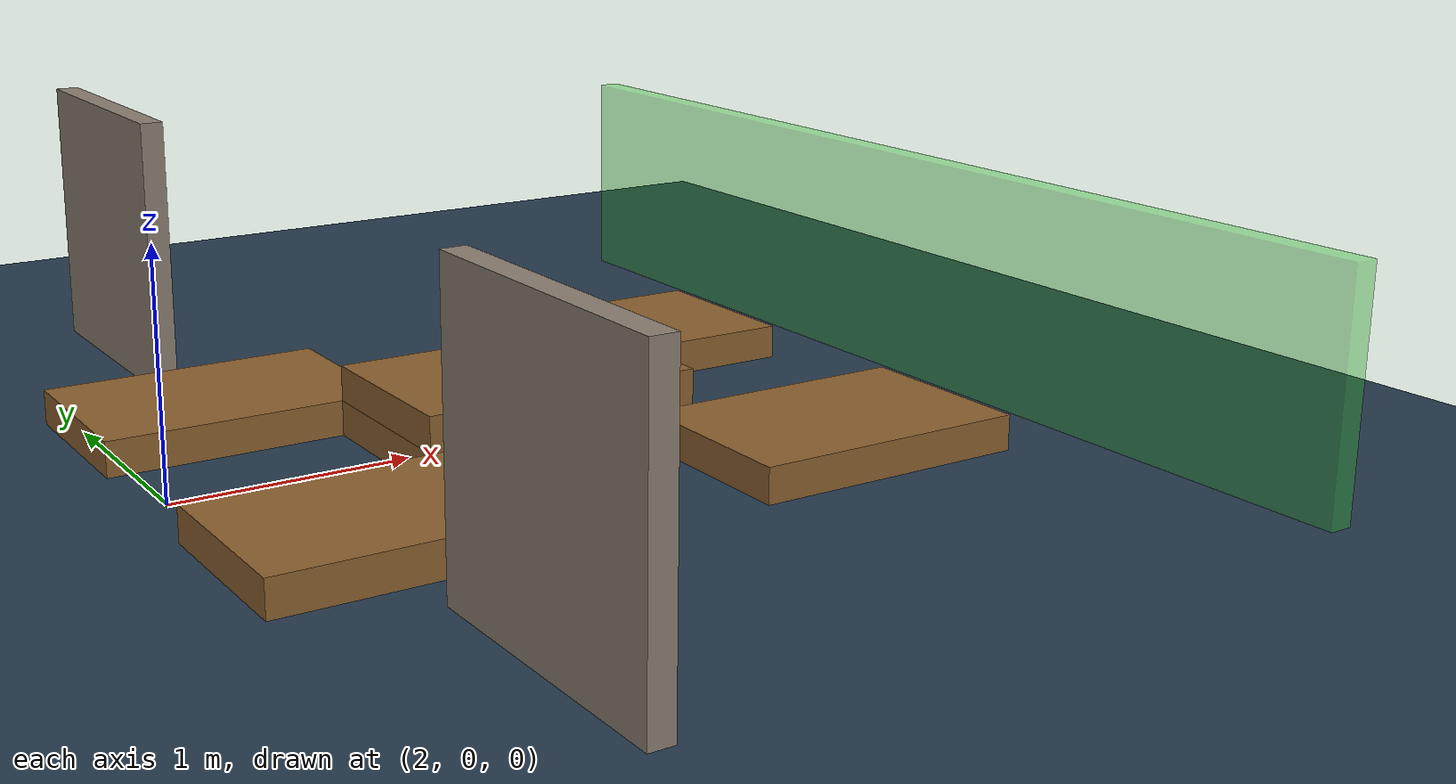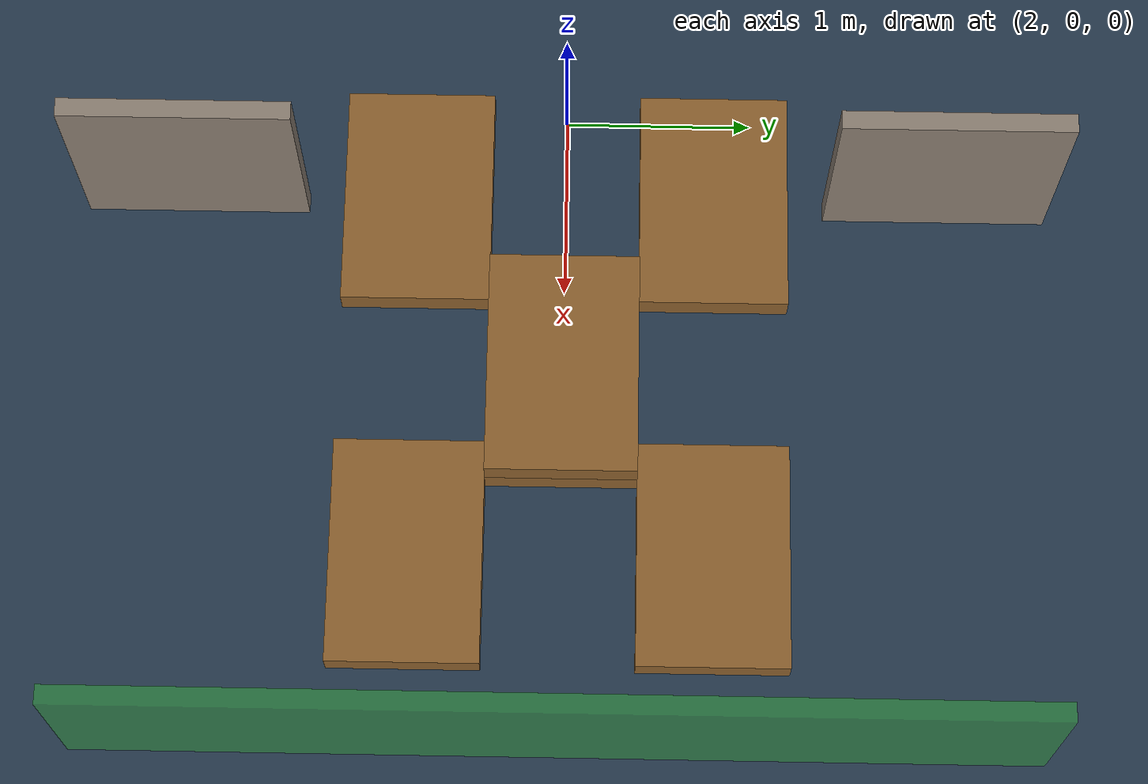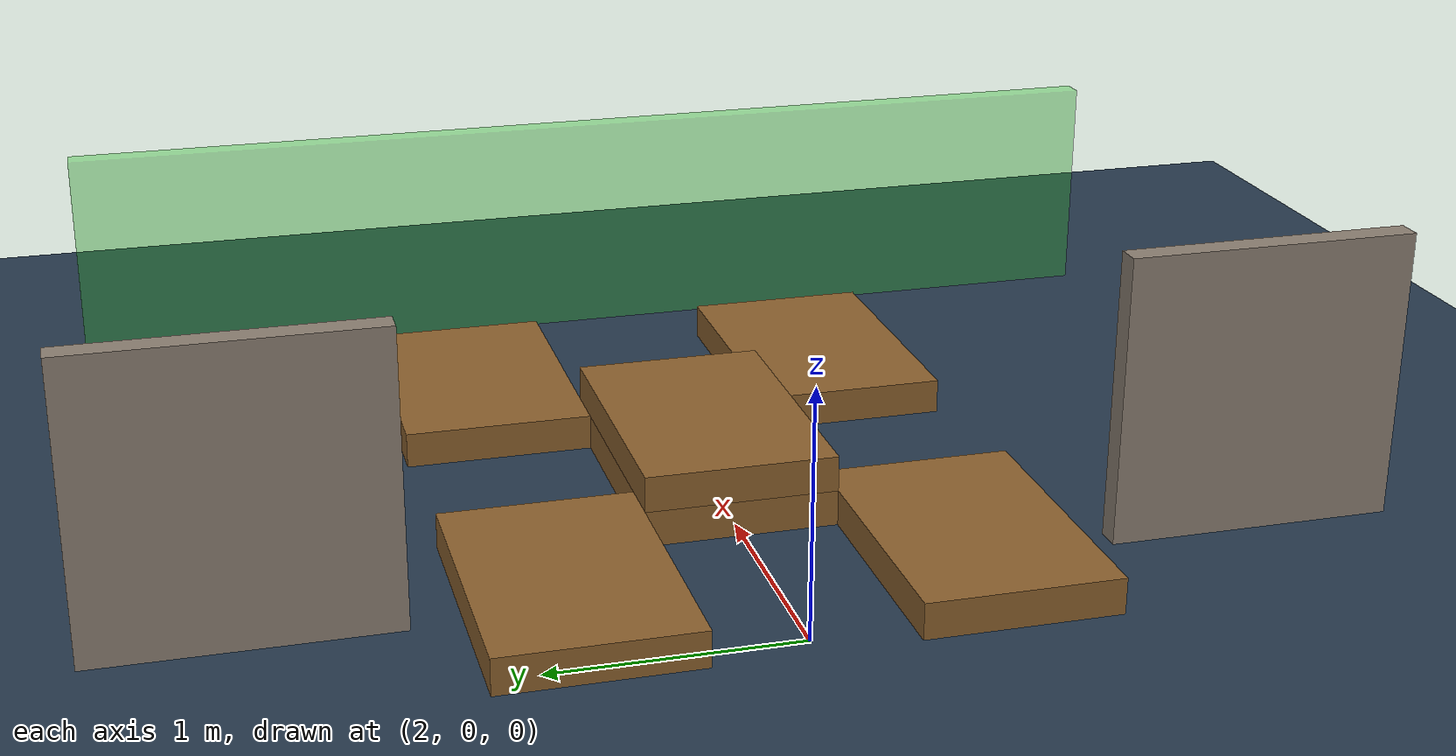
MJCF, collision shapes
<mujoco model="aesir_pista_pallets">

  <compiler angle="radian" autolimits="true" meshdir="meshes"/>
  <option timestep="0.002" iterations="50" tolerance="1e-10"
          solver="Newton" integrator="implicitfast"
          cone="elliptic" impratio="10"/>
  <size njmax="1000" nconmax="500" nstack="2000000"/>

  <visual>
    <headlight diffuse="0.6 0.6 0.6" ambient="0.3 0.3 0.3" specular="0 0 0"/>
    <rgba haze="0.15 0.25 0.35 1"/>
    <global azimuth="120" elevation="-20"/>
    <map znear="0.01" zfar="50"/>
  </visual>

  <!-- Incluye la definición completa del robot (contact, asset, worldbody, actuator, sensor) -->
  <include file="aesir_robot.xml"/>

  <default>
    <!-- Pallets: madera, alta fricción -->
    <default class="pallet">
      <geom type="box" size="0.60 0.40 0.075"
            friction="0.8 0.01 0.001" condim="3"
            rgba="0.55 0.38 0.18 1"/>
    </default>
  </default>

  <!-- Assets del mundo (texturas y malla visual de pallets) -->
  <asset>
    <mesh name="pallets_mesh" file="pallets/base_link.stl" scale="0.001 0.001 0.001"/>
    <texture name="texplane" type="2d" builtin="checker"
             rgb1=".2 .3 .4" rgb2=".1 0.15 0.2" width="512" height="512"/>
    <material name="matplane"  reflectance="0.3" texture="texplane"
              texrepeat="4 4" texuniform="true"/>
    <material name="matpallet" rgba="0.55 0.38 0.18 1"/>
    <material name="matwall"   rgba="0.55 0.50 0.45 1"/>
  </asset>

  <!-- Geometría del mundo (sin el robot — ese viene del include) -->
  <worldbody>
    <light directional="true"  diffuse=".8 .8 .8" specular=".2 .2 .2" pos="0 0 5" dir="0 0 -1"/>
    <light directional="false" pos="3.5 0 3" dir="-1 0 -1" diffuse="0.4 0.4 0.4"/>
    <geom name="floor" type="plane" size="12 12 0.1" pos="0 0 0" material="matplane"/>

    <!-- Cámaras de supervisión (mundo fijo) -->
    <camera name="cam_overview" pos="3.5 0 7" euler="0 0 -1.5707" fovy="65" mode="fixed"/>
    <camera name="cam_door"     pos="6.5 0 1.5" euler="1.3 1.5707 0"
            fovy="55" mode="targetbody" target="footprint_link"/>

    <!-- ================== PISTA: PALLETS ================== -->
    <!-- Mesh visual del conjunto (solo visual, centroide ajustado) -->
    <body name="pallets_mesh_body" pos="3 -3.49 0">
      <geom name="pallets_visual" type="mesh" mesh="pallets_mesh"
            contype="0" conaffinity="0" rgba="0.55 0.38 0.18 0.5"/>
    </body>

    <!-- Chicana A (x=2.5m) — gap central de 0.8m -->
    <body name="pallet_A1" pos="2.5  0.80 0.075"><geom class="pallet" material="matpallet"/></body>
    <body name="pallet_A2" pos="2.5 -0.80 0.075"><geom class="pallet" material="matpallet"/></body>
    <body name="wall_A_L"  pos="2.5  2.0  0.6"><geom type="box" size="0.05 0.60 0.60" material="matwall"/></body>
    <body name="wall_A_R"  pos="2.5 -2.0  0.6"><geom type="box" size="0.05 0.60 0.60" material="matwall"/></body>

    <!-- Chicana B (x=3.5m) — bloqueo central, gap a los lados -->
    <body name="pallet_B1" pos="3.5  0.0 0.075"><geom class="pallet" material="matpallet"/></body>
    <body name="pallet_B2" pos="3.5  0.0 0.225"><geom class="pallet" material="matpallet"/></body>

    <!-- Chicana C (x=4.5m) — espejo de A -->
    <body name="pallet_C1" pos="4.5  0.80 0.075"><geom class="pallet" material="matpallet"/></body>
    <body name="pallet_C2" pos="4.5 -0.80 0.075"><geom class="pallet" material="matpallet"/></body>

    <!-- Barrera meta — el robot debe cruzarla -->
    <body name="barrier_goal" pos="5.5 0 0.50">
      <geom type="box" size="0.05 2.50 0.50" rgba="0.2 0.8 0.2 0.4"
            contype="0" conaffinity="0"/>
    </body>
  </worldbody>

  <keyframe>
    <!-- qpos = base(7) + lidar_spin(1) + flipper_joints(4) +
                flipper_wheels(8) + arm(6) + fingers(2) + drive_wheels(6) = 34 -->
    <key name="home"
         qpos="0 0 0.10 1 0 0 0
               0
               0 0 0 0
               0 0 0 0 0 0 0 0
               0 0 0 0 0 0
               0 0
               0 0 0 0 0 0"/>
  </keyframe>

</mujoco>

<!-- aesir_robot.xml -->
<contact>
  <exclude body1="footprint_link" body2="flipper_1_link"/>
  <exclude body1="footprint_link" body2="flipper_2_link"/>
  <exclude body1="footprint_link" body2="flipper_3_link"/>
  <exclude body1="footprint_link" body2="flipper_4_link"/>
</contact>

<asset>
  <!-- Rutas sin prefijo meshes/ — resueltas por meshdir del mundo padre -->
  <mesh name="base_link"   file="base_link.stl"   scale="0.001 0.001 0.001"/>
  <mesh name="tracked_1"   file="tracked_1.stl"   scale="0.001 0.001 0.001"/>
  <mesh name="tracked_2"   file="tracked_2.stl"   scale="0.001 0.001 0.001"/>
  <mesh name="flipper_1_1" file="flipper_1_1.stl" scale="0.001 0.001 0.001"/>
  <mesh name="flipper_4_1" file="flipper_4_1.stl" scale="0.001 0.001 0.001"/>
  <mesh name="flipper_3_1" file="flipper_3_1.stl" scale="0.001 0.001 0.001"/>
  <mesh name="flipper_2_1" file="flipper_2_1.stl" scale="0.001 0.001 0.001"/>
  <mesh name="lidar"       file="lidar.stl"       scale="0.001 0.001 0.001"/>
</asset>

<worldbody>
  <!-- ================ ROBOT AESIR ================ -->
  <body name="footprint_link" pos="0 0 0.1">
    <freejoint name="base_freejoint"/>
    <inertial pos="0 0 0.06" mass="25.0" diaginertia="1.2 1.6 2.7"/>

    <geom pos="0 0.55 0" type="mesh" rgba="0.75 0.75 0.75 1" mesh="base_link"  contype="0" conaffinity="0"/>
    <geom pos="0 0.55 0" type="mesh" rgba="0.75 0.75 0.75 1" mesh="tracked_1"  contype="0" conaffinity="0"/>
    <geom pos="0 0.562 0" type="mesh" rgba="0.75 0.75 0.75 1" mesh="tracked_2" contype="0" conaffinity="0"/>
    <geom size="0.06 0.07915" pos="0.12 0 0.13915" type="cylinder" rgba="0.2 0.2 0.2 1"/>

    <!-- LIDAR rotatorio — 7 rayos verticales, gira sobre eje Z -->
    <body name="sensor_lidar" pos="0.32 0 0.105" euler="0 0.7854 0">
      <joint name="lidar_spin" type="hinge" axis="0 0 1" damping="0.1" armature="0.01"/>
      <geom type="mesh" rgba="0.2 0.2 0.2 1" mesh="lidar" contype="0" conaffinity="0"/>
      <site name="ray_0" pos="0.03 0 0.037" euler="0 0      0" type="sphere" size="0.005"/>
      <site name="ray_1" pos="0.03 0 0.037" euler="0 0.2793 0" type="sphere" size="0.005"/>
      <site name="ray_2" pos="0.03 0 0.037" euler="0 0.5585 0" type="sphere" size="0.005"/>
      <site name="ray_3" pos="0.03 0 0.037" euler="0 0.8378 0" type="sphere" size="0.005"/>
      <site name="ray_4" pos="0.03 0 0.037" euler="0 1.1170 0" type="sphere" size="0.005"/>
      <site name="ray_5" pos="0.03 0 0.037" euler="0 1.3963 0" type="sphere" size="0.005"/>
      <site name="ray_6" pos="0.03 0 0.037" euler="0 1.6755 0" type="sphere" size="0.005"/>
    </body>

    <!-- Cámara OAK-D frontal -->
    <geom size="0.01 0.05 0.015" pos="0.257 0 0.19" type="box" rgba="0.7 0.7 0.7 1" contype="0" conaffinity="0"/>
    <body name="camera_oakd_link" pos="0.257 0 0.19">
      <camera name="cam_oakd" pos="0 0 0" quat="0.5 -0.5 -0.5 0.5" fovy="69"/>
    </body>

    <!-- Cámara trasera (cuerpo visual omitido — logitech_c920.stl no disponible) -->
    <body name="camera_back_link" pos="-0.34 0.027 -0.02">
      <geom size="0.04 0.025 0.015" type="box" rgba="0.2 0.2 0.2 1" contype="0" conaffinity="0"/>
      <camera name="cam_back" pos="0.02 -0.027 0.175" euler="1.5708 1.5708 3.14159" fovy="78"/>
    </body>

    <!-- FLIPPERS -->
    <body name="flipper_1_link" pos="-0.24 -0.256 0.06">
      <inertial pos="0 0.00355409 0.15154" quat="0.707092 -0.00452931 0.00452931 0.707092"
                mass="3.74207" diaginertia="0.0729765 0.065573 0.00896149"/>
      <joint name="flipper_joint_1" axis="0 -1 0" damping="2.0" armature="0.05"/>
      <geom pos="0.24 0.826 -0.06" type="mesh" rgba="0.75 0.75 0.75 1" mesh="flipper_1_1" contype="0" conaffinity="0"/>
      <body name="wheel_flip1_back"  pos="0 0 0.18">
        <joint name="drive_flip1_back"  type="hinge" axis="0 1 0" damping="0.1" armature="0.05"/>
        <geom type="cylinder" size="0.07 0.02" quat="0.707107 0.707107 0 0" rgba="1 0 0 0.5" friction="1.5 0.005 0.0001"/>
      </body>
      <body name="wheel_flip1_front" pos="0 0 0.35">
        <joint name="drive_flip1_front" type="hinge" axis="0 1 0" damping="0.1" armature="0.05"/>
        <geom type="cylinder" size="0.05 0.02" quat="0.707107 0.707107 0 0" rgba="1 0 0 0.5" friction="1.5 0.005 0.0001"/>
      </body>
    </body>

    <body name="flipper_2_link" pos="0.24 -0.256 0.06">
      <inertial pos="0 -0.00355409 0.15154" quat="0.707092 0.00452931 -0.00452931 0.707092"
                mass="3.74207" diaginertia="0.0729765 0.065573 0.00896149"/>
      <joint name="flipper_joint_2" axis="0 -1 0" damping="2.0" armature="0.05"/>
      <geom pos="-0.24 0.826 -0.06" type="mesh" rgba="0.75 0.75 0.75 1" mesh="flipper_2_1" contype="0" conaffinity="0"/>
      <body name="wheel_flip2_back"  pos="0 0 0.18">
        <joint name="drive_flip2_back"  type="hinge" axis="0 1 0" damping="0.1" armature="0.05"/>
        <geom type="cylinder" size="0.07 0.02" quat="0.707107 0.707107 0 0" rgba="1 0 0 0.5" friction="1.5 0.005 0.0001"/>
      </body>
      <body name="wheel_flip2_front" pos="0 0 0.35">
        <joint name="drive_flip2_front" type="hinge" axis="0 1 0" damping="0.1" armature="0.05"/>
        <geom type="cylinder" size="0.05 0.02" quat="0.707107 0.707107 0 0" rgba="1 0 0 0.5" friction="1.5 0.005 0.0001"/>
      </body>
    </body>

    <body name="flipper_3_link" pos="0.24 0.256 0.06">
      <inertial pos="0 -0.00355409 0.15154" quat="0.707092 0.00452931 -0.00452931 0.707092"
                mass="3.74207" diaginertia="0.0729765 0.065573 0.00896149"/>
      <joint name="flipper_joint_3" axis="0 1 0" damping="2.0" armature="0.05"/>
      <geom pos="0.24 0.276 -0.06" type="mesh" rgba="0.75 0.75 0.75 1" mesh="flipper_3_1" contype="0" conaffinity="0"/>
      <body name="wheel_flip3_back"  pos="0 0 0.18">
        <joint name="drive_flip3_back"  type="hinge" axis="0 1 0" damping="0.1" armature="0.05"/>
        <geom type="cylinder" size="0.07 0.02" quat="0.707107 0.707107 0 0" rgba="1 0 0 0.5" friction="1.5 0.005 0.0001"/>
      </body>
      <body name="wheel_flip3_front" pos="0 0 0.35">
        <joint name="drive_flip3_front" type="hinge" axis="0 1 0" damping="0.1" armature="0.05"/>
        <geom type="cylinder" size="0.05 0.02" quat="0.707107 0.707107 0 0" rgba="1 0 0 0.5" friction="1.5 0.005 0.0001"/>
      </body>
    </body>

    <body name="flipper_4_link" pos="-0.24 0.256 0.06">
      <inertial pos="0 -0.00355409 0.15154" quat="0.707092 0.00452931 -0.00452931 0.707092"
                mass="3.74207" diaginertia="0.0729765 0.065573 0.00896149"/>
      <joint name="flipper_joint_4" axis="0 1 0" damping="2.0" armature="0.05"/>
      <geom pos="-0.24 0.276 -0.06" type="mesh" rgba="0.75 0.75 0.75 1" mesh="flipper_4_1" contype="0" conaffinity="0"/>
      <body name="wheel_flip4_back"  pos="0 0 0.18">
        <joint name="drive_flip4_back"  type="hinge" axis="0 1 0" damping="0.1" armature="0.05"/>
        <geom type="cylinder" size="0.07 0.02" quat="0.707107 0.707107 0 0" rgba="1 0 0 0.5" friction="1.5 0.005 0.0001"/>
      </body>
      <body name="wheel_flip4_front" pos="0 0 0.35">
        <joint name="drive_flip4_front" type="hinge" axis="0 1 0" damping="0.1" armature="0.05"/>
        <geom type="cylinder" size="0.05 0.02" quat="0.707107 0.707107 0 0" rgba="1 0 0 0.5" friction="1.5 0.005 0.0001"/>
      </body>
    </body>

    <!-- BRAZO 6-DOF -->
    <body name="link_1" pos="0.12 0 0.2183">
      <inertial pos="0 0 0" mass="1.5" diaginertia="0.01 0.01 0.005"/>
      <joint name="joint_1" axis="0 0 1" range="-3.14 3.14" actuatorfrcrange="-150 150" damping="20.0" armature="0.05"/>
      <geom size="0.05 0.05015" pos="0 0.05015 0" quat="0.707107 0.707107 0 0" type="cylinder" rgba="0.7 0.7 0.7 1"/>
      <body name="link_2" pos="0 0.1003 0">
        <inertial pos="0 0 0" mass="1.5" diaginertia="0.01 0.01 0.005"/>
        <joint name="joint_2" axis="0 1 0" range="-3.14 3.14" actuatorfrcrange="-150 150" damping="20.0" armature="0.05"/>
        <geom size="0.035 0.17658" pos="0.17658 0 0" quat="0.707107 0 0.707107 0" type="cylinder" rgba="1 0.4 0 1"/>
        <geom size="0.04 0.05015" pos="0.35316 -0.05015 0" quat="0.707107 0.707107 0 0" type="cylinder" rgba="0.2 0.2 0.2 1"/>
        <body name="link_3" pos="0.35316 -0.1003 0">
          <inertial pos="0 0 0" mass="1.5" diaginertia="0.01 0.01 0.005"/>
          <joint name="joint_3" axis="0 1 0" range="-3.14 3.14" actuatorfrcrange="-150 150" damping="20.0" armature="0.05"/>
          <geom size="0.03 0.233" pos="0.233 0 0" quat="0.707107 0 0.707107 0" type="cylinder" rgba="0.7 0.7 0.7 1"/>
          <geom size="0.03 0.037" pos="0.466 0.037 0" quat="0.707107 0.707107 0 0" type="cylinder" rgba="1 0.4 0 1"/>
          <body name="link_4" pos="0.466 0.074 0">
            <inertial pos="0 0 0" mass="1.5" diaginertia="0.01 0.01 0.005"/>
            <joint name="joint_4" axis="0 1 0" range="-3.14 3.14" actuatorfrcrange="-50 50" damping="20.0" armature="0.05"/>
            <geom size="0.025 0.04675" pos="0.04675 0 0" quat="0.707107 0 0.707107 0" type="cylinder" rgba="0.2 0.2 0.2 1"/>
            <body name="link_5" pos="0.0935 0 0">
              <inertial pos="0 0 0" mass="1.5" diaginertia="0.01 0.01 0.005"/>
              <joint name="joint_5" axis="1 0 0" range="-3.14 3.14" actuatorfrcrange="-50 50" damping="20.0" armature="0.05"/>
              <geom size="0.025 0.04675" pos="0 0.04675 0" quat="0.707107 0.707107 0 0" type="cylinder" rgba="0.7 0.7 0.7 1"/>
              <body name="link_6" pos="0 0.0935 0">
                <inertial pos="0 0 0.00162" mass="1.85" diaginertia="0.0112 0.0112 0.006"/>
                <joint name="joint_6" axis="0 1 0" range="-3.14 3.14" actuatorfrcrange="-50 50" damping="20.0" armature="0.05"/>
                <geom size="0.04 0.02 0.03" pos="0 0.02 0" type="box" rgba="0.2 0.2 0.2 1"/>
                <!-- Cámara de la garra (cuerpo visual omitido) -->
                <body name="logitech_gripper_assembly" pos="0.05 0.00466 -0.1439" euler="-0.1745 0 -1.5708">
                  <geom size="0.04 0.015 0.025" type="box" rgba="0.2 0.2 0.2 1" contype="0" conaffinity="0"/>
                  <camera name="cam_gripper" pos="0.00466 -0.05 0.2" euler="-1.5708 1.5708 0.1745" fovy="78"/>
                </body>
                <body name="left_finger_link" pos="-0.035 0.04 0">
                  <inertial pos="0 0 0" mass="0.05" diaginertia="0.0001 0.0001 0.0001"/>
                  <joint name="left_finger_joint" axis="1 0 0" type="slide" range="0 0.03" actuatorfrcrange="-50 50" damping="20.0" armature="0.05"/>
                  <geom size="0.005 0.04 0.01" pos="0 0.04 0" type="box" rgba="1 0.4 0 1"/>
                </body>
                <body name="right_finger_link" pos="0.035 0.04 0">
                  <inertial pos="0 0 0" mass="0.05" diaginertia="0.0001 0.0001 0.0001"/>
                  <joint name="right_finger_joint" axis="-1 0 0" type="slide" range="0 0.03" actuatorfrcrange="-50 50" damping="20.0" armature="0.05"/>
                  <geom size="0.005 0.04 0.01" pos="0 0.04 0" type="box" rgba="1 0.4 0 1"/>
                </body>
              </body>
            </body>
          </body>
        </body>
      </body>
    </body>

    <!-- RUEDAS MOTRICES IZQUIERDA (drive_l_2 = rueda maestra para diff_drive) -->
    <body name="wheel_l_1" pos="0.24  0.18 0.06">
      <inertial pos="0 0 0" mass="0.8" diaginertia="0.01 0.01 0.01"/>
      <joint name="drive_l_1" type="hinge" axis="0 1 0"/>
      <geom type="cylinder" size="0.1 0.1"   quat="0.707107 0.707107 0 0" rgba="0.1 0.1 0.1 1" friction="1.5 0.005 0.0001"/>
    </body>
    <body name="wheel_l_2" pos="0     0.165 0.06">
      <inertial pos="0 0 0" mass="0.8" diaginertia="0.01 0.01 0.01"/>
      <joint name="drive_l_2" type="hinge" axis="0 1 0"/>
      <geom type="cylinder" size="0.1 0.085" quat="0.707107 0.707107 0 0" rgba="0.1 0.1 0.1 1" friction="1.5 0.005 0.0001"/>
    </body>
    <body name="wheel_l_3" pos="-0.24 0.18 0.06">
      <inertial pos="0 0 0" mass="0.8" diaginertia="0.01 0.01 0.01"/>
      <joint name="drive_l_3" type="hinge" axis="0 1 0"/>
      <geom type="cylinder" size="0.1 0.085" quat="0.707107 0.707107 0 0" rgba="0.1 0.1 0.1 1" friction="1.5 0.005 0.0001"/>
    </body>

    <!-- RUEDAS MOTRICES DERECHA (drive_r_2 = rueda maestra para diff_drive) -->
    <body name="wheel_r_1" pos="0.24  -0.18 0.06">
      <inertial pos="0 0 0" mass="0.8" diaginertia="0.01 0.01 0.01"/>
      <joint name="drive_r_1" type="hinge" axis="0 1 0"/>
      <geom type="cylinder" size="0.1 0.1"   quat="0.707107 0.707107 0 0" rgba="0.1 0.1 0.1 1" friction="1.5 0.005 0.0001"/>
    </body>
    <body name="wheel_r_2" pos="0     -0.165 0.06">
      <inertial pos="0 0 0" mass="0.8" diaginertia="0.01 0.01 0.01"/>
      <joint name="drive_r_2" type="hinge" axis="0 1 0"/>
      <geom type="cylinder" size="0.1 0.085" quat="0.707107 0.707107 0 0" rgba="0.1 0.1 0.1 1" friction="1.5 0.005 0.0001"/>
    </body>
    <body name="wheel_r_3" pos="-0.24 -0.18 0.06">
      <inertial pos="0 0 0" mass="0.8" diaginertia="0.01 0.01 0.01"/>
      <joint name="drive_r_3" type="hinge" axis="0 1 0"/>
      <geom type="cylinder" size="0.1 0.085" quat="0.707107 0.707107 0 0" rgba="0.1 0.1 0.1 1" friction="1.5 0.005 0.0001"/>
    </body>

  </body><!-- /footprint_link -->
</worldbody>

<actuator>
  <!-- FLIPPERS — control de posición -->
  <position name="pos_flipper_1" joint="flipper_joint_1" kp="200" ctrlrange="-3.1416 3.1416"/>
  <position name="pos_flipper_2" joint="flipper_joint_2" kp="200" ctrlrange="-3.1416 3.1416"/>
  <position name="pos_flipper_3" joint="flipper_joint_3" kp="200" ctrlrange="-3.1416 3.1416"/>
  <position name="pos_flipper_4" joint="flipper_joint_4" kp="200" ctrlrange="-3.1416 3.1416"/>

  <!-- BRAZO 6-DOF — control de posición (sobreescrito por joint_group_velocity_controller en ROS) -->
  <position name="pos_joint_1" joint="joint_1" kp="200" ctrlrange="-3.1416 3.1416"/>
  <position name="pos_joint_2" joint="joint_2" kp="200" ctrlrange="-3.1416 3.1416"/>
  <position name="pos_joint_3" joint="joint_3" kp="200" ctrlrange="-3.1416 3.1416"/>
  <position name="pos_joint_4" joint="joint_4" kp="200" ctrlrange="-3.1416 3.1416"/>
  <position name="pos_joint_5" joint="joint_5" kp="200" ctrlrange="-3.1416 3.1416"/>
  <position name="pos_joint_6" joint="joint_6" kp="200" ctrlrange="-3.1416 3.1416"/>

  <!-- GRIPPER -->
  <position name="pos_left_finger"  joint="left_finger_joint"  kp="50" ctrlrange="0 0.03"/>
  <position name="pos_right_finger" joint="right_finger_joint" kp="50" ctrlrange="0 0.03"/>

  <!-- RUEDAS MOTRICES — diff_drive_controller controla drive_l_2 y drive_r_2 -->
  <velocity name="vel_drive_l_1" joint="drive_l_1" kv="5" ctrlrange="-20 20"/>
  <velocity name="vel_drive_l_2" joint="drive_l_2" kv="5" ctrlrange="-20 20"/>
  <velocity name="vel_drive_l_3" joint="drive_l_3" kv="5" ctrlrange="-20 20"/>
  <velocity name="vel_drive_r_1" joint="drive_r_1" kv="5" ctrlrange="-20 20"/>
  <velocity name="vel_drive_r_2" joint="drive_r_2" kv="5" ctrlrange="-20 20"/>
  <velocity name="vel_drive_r_3" joint="drive_r_3" kv="5" ctrlrange="-20 20"/>

  <!-- RUEDAS DE FLIPPERS -->
  <velocity name="vel_flip1_back"  joint="drive_flip1_back"  kv="5" ctrlrange="-1 1"/>
  <velocity name="vel_flip1_front" joint="drive_flip1_front" kv="5" ctrlrange="-1 1"/>
  <velocity name="vel_flip2_back"  joint="drive_flip2_back"  kv="5" ctrlrange="-1 1"/>
  <velocity name="vel_flip2_front" joint="drive_flip2_front" kv="5" ctrlrange="-1 1"/>
  <velocity name="vel_flip3_back"  joint="drive_flip3_back"  kv="5" ctrlrange="-1 1"/>
  <velocity name="vel_flip3_front" joint="drive_flip3_front" kv="5" ctrlrange="-1 1"/>
  <velocity name="vel_flip4_back"  joint="drive_flip4_back"  kv="5" ctrlrange="-1 1"/>
  <velocity name="vel_flip4_front" joint="drive_flip4_front" kv="5" ctrlrange="-1 1"/>

  <!-- LIDAR — giro continuo a velocidad constante -->
  <velocity name="vel_lidar_spin" joint="lidar_spin" kv="10" ctrlrange="-100 100"/>
</actuator>

<sensor>
  <!-- 7 rayos verticales del LiDAR rotatorio (ambiente A) -->
  <rangefinder name="lidar_0" site="ray_0" cutoff="15.0" noise="0.02"/>
  <rangefinder name="lidar_1" site="ray_1" cutoff="15.0" noise="0.02"/>
  <rangefinder name="lidar_2" site="ray_2" cutoff="15.0" noise="0.02"/>
  <rangefinder name="lidar_3" site="ray_3" cutoff="15.0" noise="0.02"/>
  <rangefinder name="lidar_4" site="ray_4" cutoff="15.0" noise="0.02"/>
  <rangefinder name="lidar_5" site="ray_5" cutoff="15.0" noise="0.02"/>
  <rangefinder name="lidar_6" site="ray_6" cutoff="15.0" noise="0.02"/>
</sensor>
